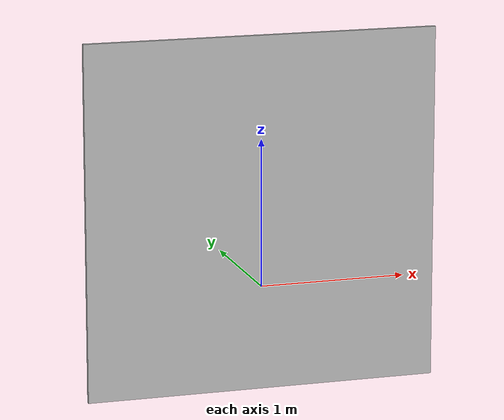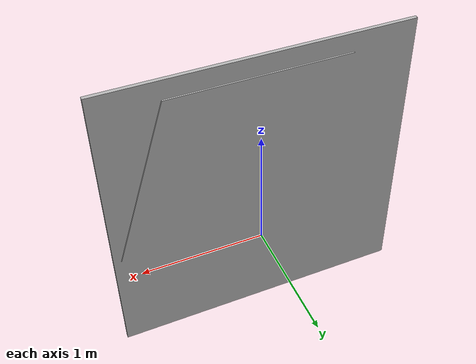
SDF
<?xml version="1.0" ?>
<sdf version="1.6">
    <model name="OFICIAL_PENTAGONO">
        <pose>0 0 0.5 0 0 0</pose>
        <static>true</static>
        <link name="link">
            <collision name="collision">
                <geometry>
                    <mesh>
                        <uri>model://OFICIAL_PENTAGONO/meshes/PENT.obj</uri>
                        <scale>3 3 3</scale>
                    </mesh>
                </geometry>
            </collision>
            <visual name="visual">
                <geometry>
                    <mesh>
                        <uri>model://OFICIAL_PENTAGONO/meshes/PENT.obj</uri>
                        <scale>3 3 3</scale>
                    </mesh>
                </geometry>
            </visual>
        </link>
    </model>
</sdf>
